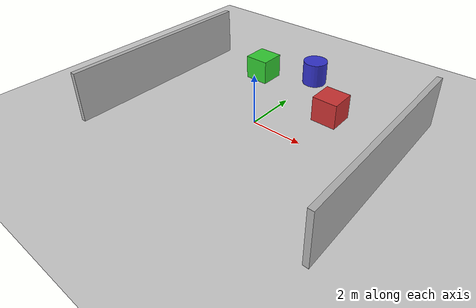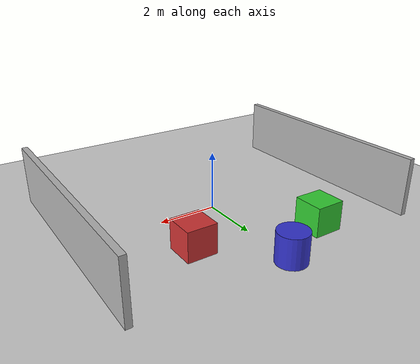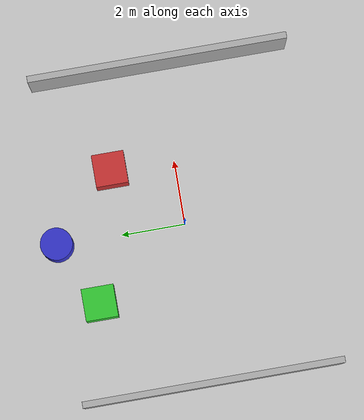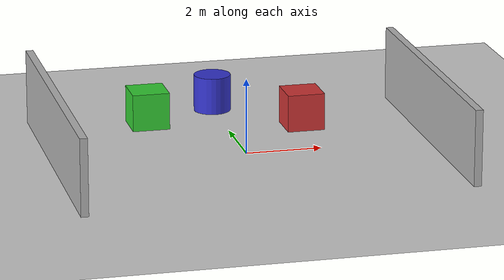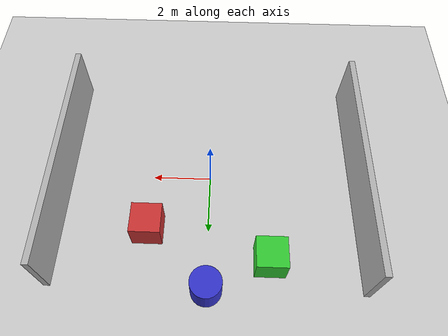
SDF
<?xml version="1.0" ?>
<sdf version="1.6">
  <world name="default">

    <include>
      <uri>model://ground_plane</uri>
    </include>

    <include>
      <uri>model://sun</uri>
    </include>

    <!-- Some obstacles for the robot to navigate around -->
    <model name="box1">
      <pose>2 2 0.5 0 0 0</pose>
      <static>true</static>
      <link name="link">
        <collision name="collision">
          <geometry>
            <box>
              <size>1 1 1</size>
            </box>
          </geometry>
        </collision>
        <visual name="visual">
          <geometry>
            <box>
              <size>1 1 1</size>
            </box>
          </geometry>
          <material>
            <ambient>0.8 0.2 0.2 1</ambient>
            <diffuse>0.8 0.2 0.2 1</diffuse>
            <specular>0.8 0.2 0.2 1</specular>
          </material>
        </visual>
      </link>
    </model>

    <model name="box2">
      <pose>-2 3 0.5 0 0 0</pose>
      <static>true</static>
      <link name="link">
        <collision name="collision">
          <geometry>
            <box>
              <size>1 1 1</size>
            </box>
          </geometry>
        </collision>
        <visual name="visual">
          <geometry>
            <box>
              <size>1 1 1</size>
            </box>
          </geometry>
          <material>
            <ambient>0.2 0.8 0.2 1</ambient>
            <diffuse>0.2 0.8 0.2 1</diffuse>
            <specular>0.2 0.8 0.2 1</specular>
          </material>
        </visual>
      </link>
    </model>

    <model name="cylinder1">
      <pose>0 4 0.5 0 0 0</pose>
      <static>true</static>
      <link name="link">
        <collision name="collision">
          <geometry>
            <cylinder>
              <radius>0.5</radius>
              <length>1</length>
            </cylinder>
          </geometry>
        </collision>
        <visual name="visual">
          <geometry>
            <cylinder>
              <radius>0.5</radius>
              <length>1</length>
            </cylinder>
          </geometry>
          <material>
            <ambient>0.2 0.2 0.8 1</ambient>
            <diffuse>0.2 0.2 0.8 1</diffuse>
            <specular>0.2 0.2 0.8 1</specular>
          </material>
        </visual>
      </link>
    </model>

    <!-- Walls to create a more interesting environment -->
    <model name="wall1">
      <pose>5 0 1 0 0 0</pose>
      <static>true</static>
      <link name="link">
        <collision name="collision">
          <geometry>
            <box>
              <size>0.2 8 2</size>
            </box>
          </geometry>
        </collision>
        <visual name="visual">
          <geometry>
            <box>
              <size>0.2 8 2</size>
            </box>
          </geometry>
          <material>
            <ambient>0.7 0.7 0.7 1</ambient>
            <diffuse>0.7 0.7 0.7 1</diffuse>
            <specular>0.7 0.7 0.7 1</specular>
          </material>
        </visual>
      </link>
    </model>

    <model name="wall2">
      <pose>-5 0 1 0 0 0</pose>
      <static>true</static>
      <link name="link">
        <collision name="collision">
          <geometry>
            <box>
              <size>0.2 8 2</size>
            </box>
          </geometry>
        </collision>
        <visual name="visual">
          <geometry>
            <box>
              <size>0.2 8 2</size>
            </box>
          </geometry>
          <material>
            <ambient>0.7 0.7 0.7 1</ambient>
            <diffuse>0.7 0.7 0.7 1</diffuse>
            <specular>0.7 0.7 0.7 1</specular>
          </material>
        </visual>
      </link>
    </model>

  </world>
</sdf>
